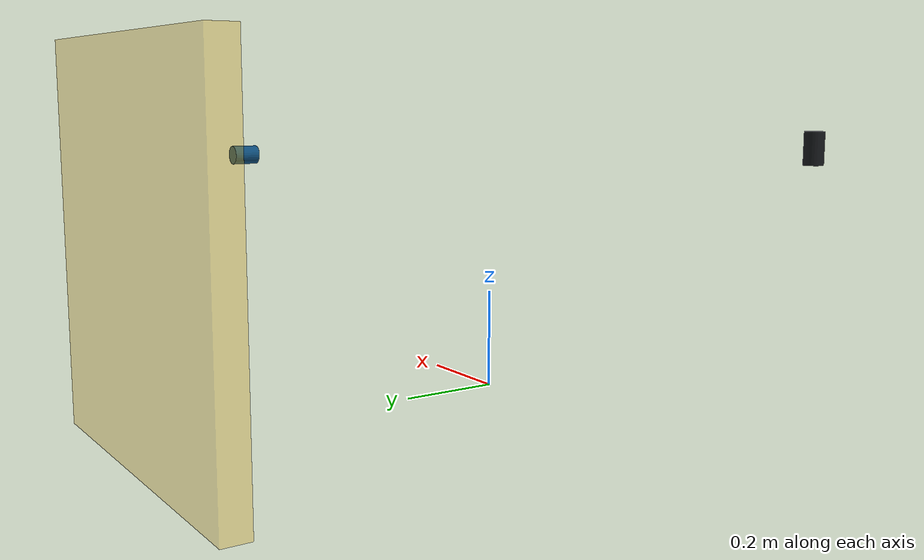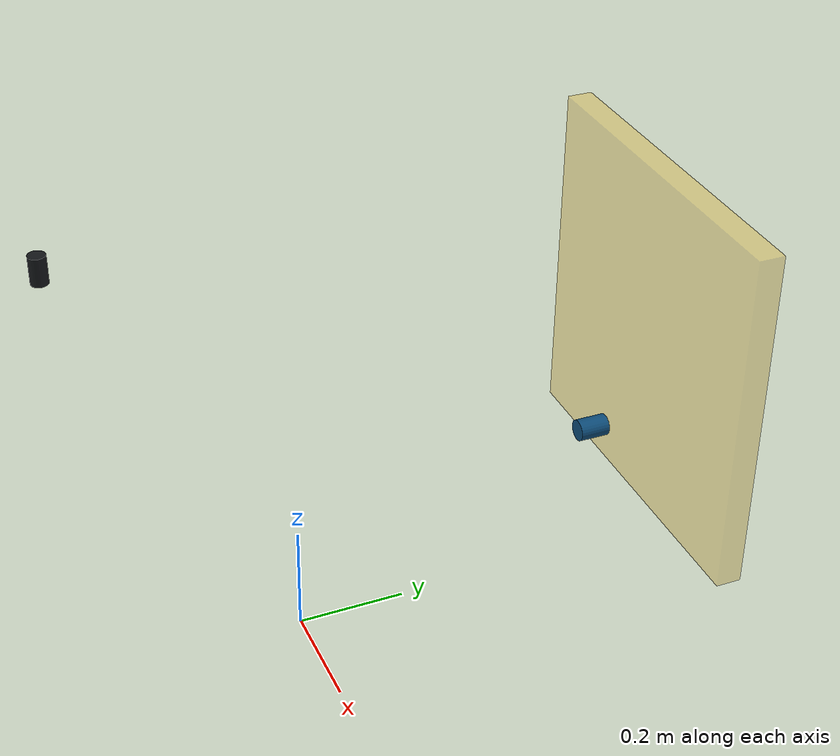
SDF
<?xml version="1.0"?>
<sdf version="1.10">
  <model name="formal_physical_service_station">
    <static>true</static>
    <!-- Coordinates assume the formal vehicle is spawned at the origin. The
         fixture bodies overlap only the dedicated receptacle/coupling collars. -->
    <link name="charge_plug_fixture_link">
      <pose>0.250 0.430 0.4831 1.570796327 0 0</pose>
      <visual name="charge_plug_fixture_visual">
        <geometry><cylinder><radius>0.018</radius><length>0.050</length></cylinder></geometry>
        <material><ambient>0.04 0.20 0.32 1</ambient><diffuse>0.05 0.30 0.48 1</diffuse></material>
      </visual>
      <collision name="charge_plug_fixture_collision">
        <geometry><cylinder><radius>0.018</radius><length>0.050</length></cylinder></geometry>
        <surface><friction><ode><mu>0.8</mu><mu2>0.8</mu2></ode></friction></surface>
      </collision>
    </link>
    <link name="wastewater_hose_fixture_link">
      <pose>-0.555 -0.305 0.5101 0 0 0</pose>
      <visual name="wastewater_hose_fixture_visual">
        <geometry><cylinder><radius>0.018</radius><length>0.060</length></cylinder></geometry>
        <material><ambient>0.03 0.035 0.04 1</ambient><diffuse>0.08 0.09 0.10 1</diffuse></material>
      </visual>
      <collision name="wastewater_hose_fixture_collision">
        <geometry><cylinder><radius>0.018</radius><length>0.060</length></cylinder></geometry>
        <surface><friction><ode><mu>0.9</mu><mu2>0.9</mu2></ode></friction></surface>
      </collision>
    </link>
    <link name="service_station_marker_link">
      <pose>-0.15 0.78 0.35 0 0 0</pose>
      <visual name="service_station_marker_visual">
        <geometry><box><size>0.70 0.05 0.70</size></box></geometry>
        <material><ambient>0.75 0.58 0.08 0.35</ambient><diffuse>0.90 0.70 0.10 0.35</diffuse></material>
        <transparency>0.65</transparency>
      </visual>
    </link>
  </model>
</sdf>
